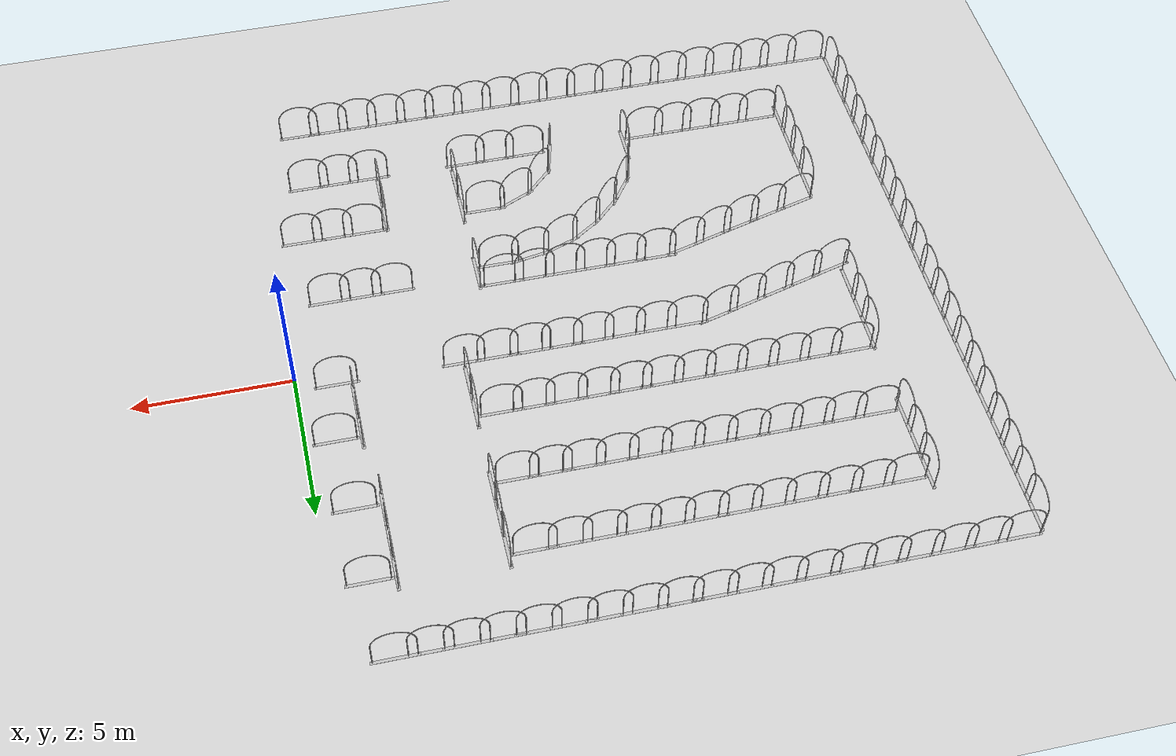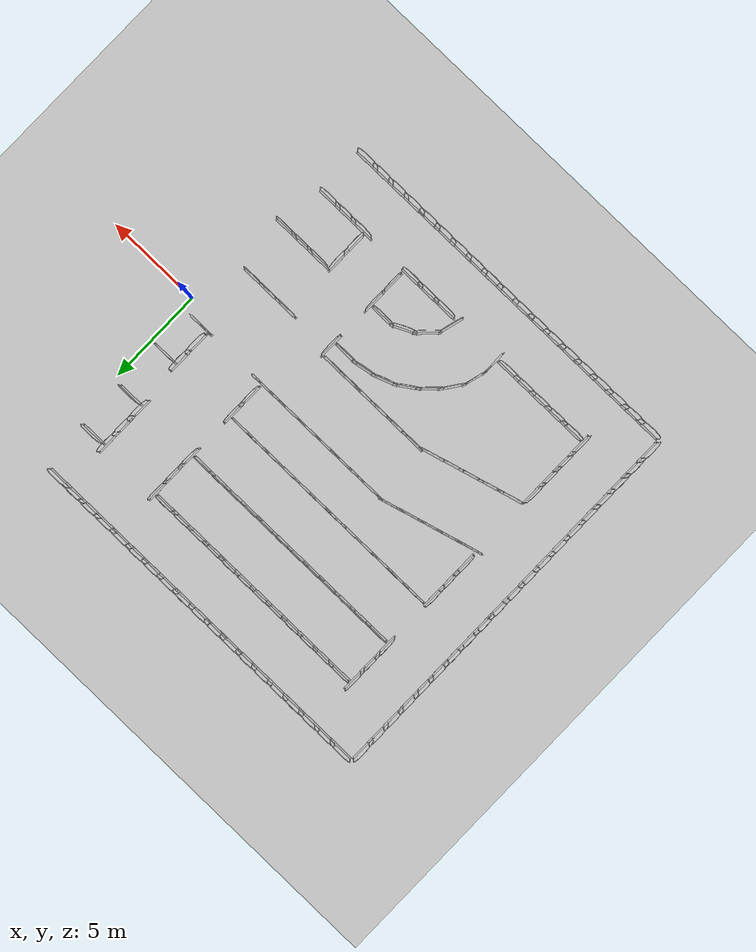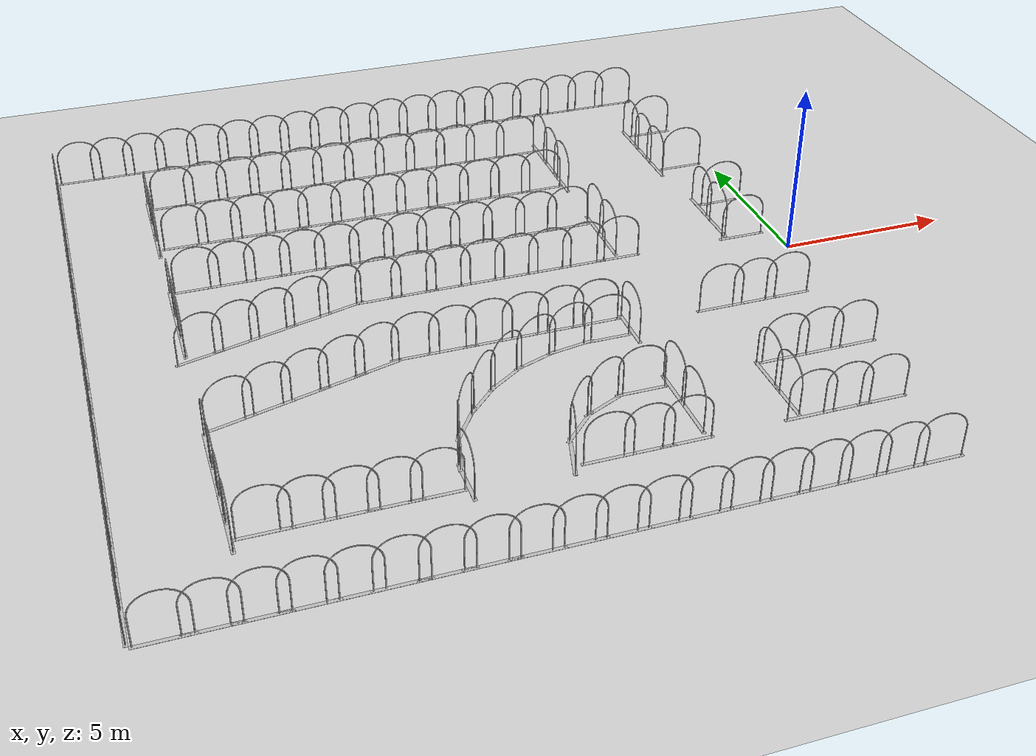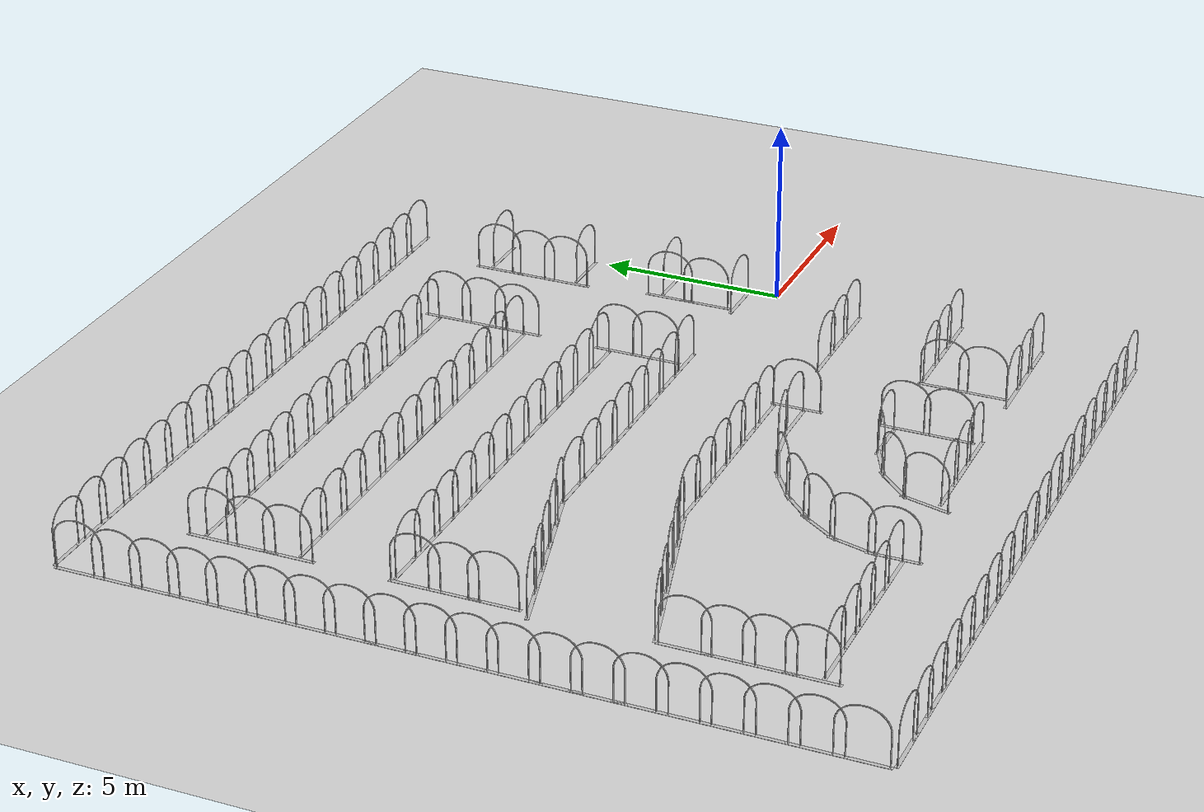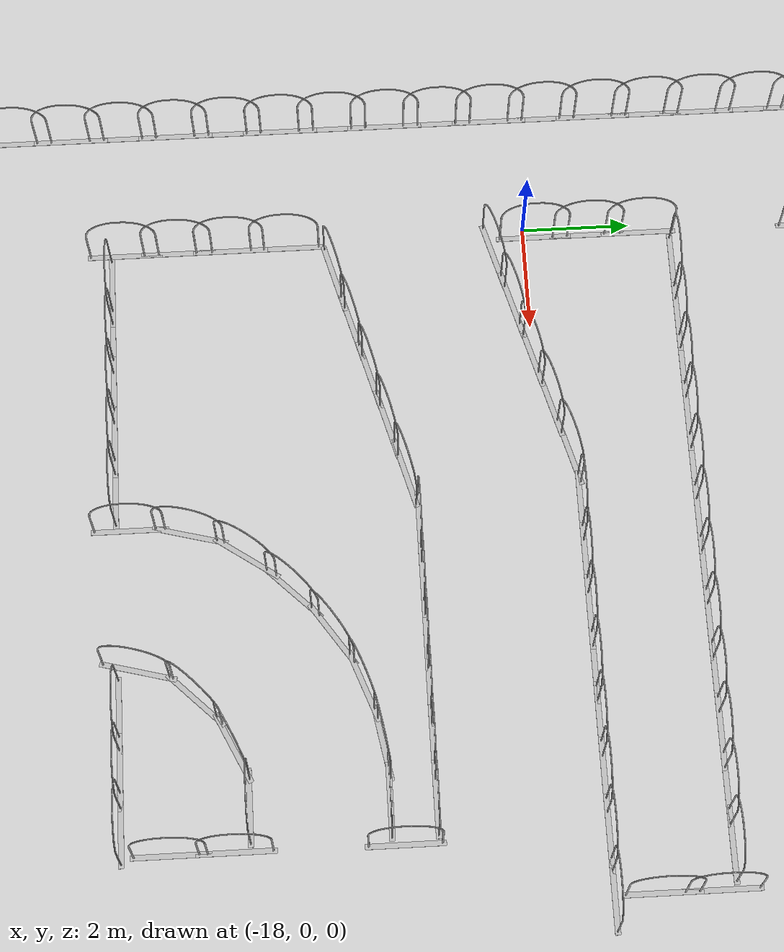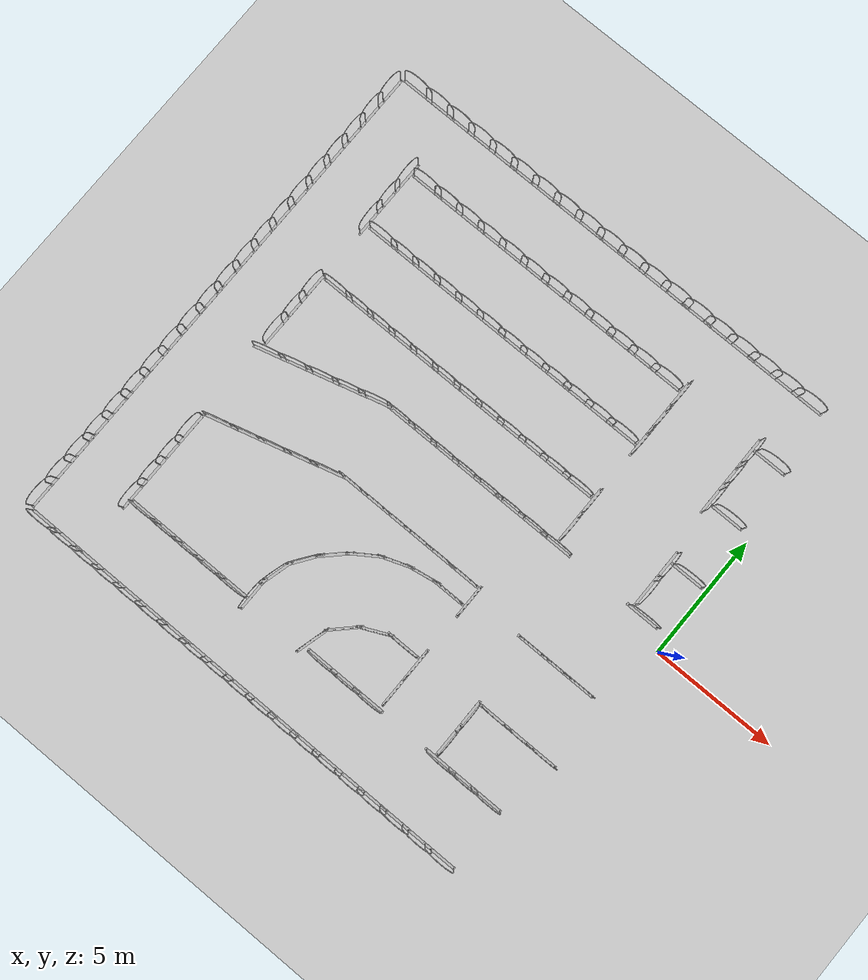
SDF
<sdf version="1.6">
 <world name="racetrack_world">
  <model name="ground_plane">
   <static>true</static>
   <link name="link">
    <collision name="collision"><geometry><plane><normal>0 0 1</normal></plane></geometry></collision>
    <visual name="visual">
     <geometry><plane><normal>0 0 1</normal><size>100 100</size></plane></geometry>
     <material>
      <ambient>0.8 0.8 0.8 1</ambient>
      <diffuse>0.8 0.8 0.8 1</diffuse>
      <specular>0.8 0.8 0.8 1</specular>
     </material>
    </visual>
   </link>
  </model>
  <include>
   <name>model_0</name>
   <uri>../models/straw_bale/model.sdf</uri>
   <pose>-19.5 10.25 0.25 0 0 -0.0</pose>
  </include>
  <include>
   <name>model_1</name>
   <uri>../models/straw_bale/model.sdf</uri>
   <pose>-18.5 10.25 0.25 0 0 -0.0</pose>
  </include>
  <include>
   <name>model_2</name>
   <uri>../models/straw_bale/model.sdf</uri>
   <pose>-17.5 10.25 0.25 0 0 -0.0</pose>
  </include>
  <include>
   <name>model_3</name>
   <uri>../models/straw_bale/model.sdf</uri>
   <pose>-16.5 10.25 0.25 0 0 -0.0</pose>
  </include>
  <include>
   <name>model_4</name>
   <uri>../models/straw_bale/model.sdf</uri>
   <pose>-15.5 10.25 0.25 0 0 -0.0</pose>
  </include>
  <include>
   <name>model_5</name>
   <uri>../models/straw_bale/model.sdf</uri>
   <pose>-14.5 10.25 0.25 0 0 -0.0</pose>
  </include>
  <include>
   <name>model_6</name>
   <uri>../models/straw_bale/model.sdf</uri>
   <pose>-13.5 10.25 0.25 0 0 -0.0</pose>
  </include>
  <include>
   <name>model_7</name>
   <uri>../models/straw_bale/model.sdf</uri>
   <pose>-12.5 10.25 0.25 0 0 -0.0</pose>
  </include>
  <include>
   <name>model_8</name>
   <uri>../models/straw_bale/model.sdf</uri>
   <pose>-20.25 9.5 0.25 0 0 1.5707963267948966</pose>
  </include>
  <include>
   <name>model_9</name>
   <uri>../models/straw_bale/model.sdf</uri>
   <pose>-20.25 8.5 0.25 0 0 1.5707963267948966</pose>
  </include>
  <include>
   <name>model_10</name>
   <uri>../models/straw_bale/model.sdf</uri>
   <pose>-20.25 7.5 0.25 0 0 1.5707963267948966</pose>
  </include>
  <include>
   <name>model_11</name>
   <uri>../models/straw_bale/model.sdf</uri>
   <pose>-20.25 6.5 0.25 0 0 1.5707963267948966</pose>
  </include>
  <include>
   <name>model_12</name>
   <uri>../models/straw_bale/model.sdf</uri>
   <pose>-20.25 5.5 0.25 0 0 1.5707963267948966</pose>
  </include>
  <include>
   <name>model_13</name>
   <uri>../models/straw_bale/model.sdf</uri>
   <pose>-20.25 4.5 0.25 0 0 1.5707963267948966</pose>
  </include>
  <include>
   <name>model_14</name>
   <uri>../models/straw_bale/model.sdf</uri>
   <pose>-20.25 3.5 0.25 0 0 1.5707963267948966</pose>
  </include>
  <include>
   <name>model_15</name>
   <uri>../models/straw_bale/model.sdf</uri>
   <pose>-20.25 2.5 0.25 0 0 1.5707963267948966</pose>
  </include>
  <include>
   <name>model_16</name>
   <uri>../models/straw_bale/model.sdf</uri>
   <pose>-11.5 10.25 0.25 0 0 -0.0</pose>
  </include>
  <include>
   <name>model_17</name>
   <uri>../models/straw_bale/model.sdf</uri>
   <pose>-10.5 10.25 0.25 0 0 -0.0</pose>
  </include>
  <include>
   <name>model_18</name>
   <uri>../models/straw_bale/model.sdf</uri>
   <pose>-9.5 10.25 0.25 0 0 -0.0</pose>
  </include>
  <include>
   <name>model_19</name>
   <uri>../models/straw_bale/model.sdf</uri>
   <pose>-8.5 10.25 0.25 0 0 -0.0</pose>
  </include>
  <include>
   <name>model_20</name>
   <uri>../models/straw_bale/model.sdf</uri>
   <pose>-7.5 10.25 0.25 0 0 -0.0</pose>
  </include>
  <include>
   <name>model_21</name>
   <uri>../models/straw_bale/model.sdf</uri>
   <pose>-6.5 10.25 0.25 0 0 -0.0</pose>
  </include>
  <include>
   <name>model_22</name>
   <uri>../models/straw_bale/model.sdf</uri>
   <pose>-5.5 10.25 0.25 0 0 -0.0</pose>
  </include>
  <include>
   <name>model_23</name>
   <uri>../models/straw_bale/model.sdf</uri>
   <pose>-4.5 10.25 0.25 0 0 -0.0</pose>
  </include>
  <include>
   <name>model_24</name>
   <uri>../models/straw_bale/model.sdf</uri>
   <pose>-3.5 10.25 0.25 0 0 -0.0</pose>
  </include>
  <include>
   <name>model_25</name>
   <uri>../models/straw_bale/model.sdf</uri>
   <pose>-2.5 10.25 0.25 0 0 -0.0</pose>
  </include>
  <include>
   <name>model_26</name>
   <uri>../models/straw_bale/model.sdf</uri>
   <pose>-1.5 10.25 0.25 0 0 -0.0</pose>
  </include>
  <include>
   <name>model_48</name>
   <uri>../models/straw_bale/model.sdf</uri>
   <pose>-20.25 1.5 0.25 0 0 1.5707963267948966</pose>
  </include>
  <include>
   <name>model_49</name>
   <uri>../models/straw_bale/model.sdf</uri>
   <pose>-20.25 0.5 0.25 0 0 1.5707963267948966</pose>
  </include>
  <include>
   <name>model_50</name>
   <uri>../models/straw_bale/model.sdf</uri>
   <pose>-20.25 -0.5 0.25 0 0 1.5707963267948966</pose>
  </include>
  <include>
   <name>model_51</name>
   <uri>../models/straw_bale/model.sdf</uri>
   <pose>-20.25 -1.5 0.25 0 0 1.5707963267948966</pose>
  </include>
  <include>
   <name>model_52</name>
   <uri>../models/straw_bale/model.sdf</uri>
   <pose>-20.25 -2.5 0.25 0 0 1.5707963267948966</pose>
  </include>
  <include>
   <name>model_53</name>
   <uri>../models/straw_bale/model.sdf</uri>
   <pose>-20.25 -3.5 0.25 0 0 1.5707963267948966</pose>
  </include>
  <include>
   <name>model_54</name>
   <uri>../models/straw_bale/model.sdf</uri>
   <pose>-20.25 -4.5 0.25 0 0 1.5707963267948966</pose>
  </include>
  <include>
   <name>model_55</name>
   <uri>../models/straw_bale/model.sdf</uri>
   <pose>-20.25 -5.5 0.25 0 0 1.5707963267948966</pose>
  </include>
  <include>
   <name>model_56</name>
   <uri>../models/straw_bale/model.sdf</uri>
   <pose>-20.25 -6.5 0.25 0 0 1.5707963267948966</pose>
  </include>
  <include>
   <name>model_57</name>
   <uri>../models/straw_bale/model.sdf</uri>
   <pose>-20.25 -7.5 0.25 0 0 1.5707963267948966</pose>
  </include>
  <include>
   <name>model_58</name>
   <uri>../models/straw_bale/model.sdf</uri>
   <pose>-20.25 -8.5 0.25 0 0 1.5707963267948966</pose>
  </include>
  <include>
   <name>model_59</name>
   <uri>../models/straw_bale/model.sdf</uri>
   <pose>-20.25 -9.5 0.25 0 0 1.5707963267948966</pose>
  </include>
  <include>
   <name>model_60</name>
   <uri>../models/straw_bale/model.sdf</uri>
   <pose>-19.5 -10.25 0.25 0 0 -0.0</pose>
  </include>
  <include>
   <name>model_61</name>
   <uri>../models/straw_bale/model.sdf</uri>
   <pose>-18.5 -10.25 0.25 0 0 -0.0</pose>
  </include>
  <include>
   <name>model_62</name>
   <uri>../models/straw_bale/model.sdf</uri>
   <pose>-17.5 -10.25 0.25 0 0 -0.0</pose>
  </include>
  <include>
   <name>model_63</name>
   <uri>../models/straw_bale/model.sdf</uri>
   <pose>-16.5 -10.25 0.25 0 0 -0.0</pose>
  </include>
  <include>
   <name>model_64</name>
   <uri>../models/straw_bale/model.sdf</uri>
   <pose>-15.5 -10.25 0.25 0 0 -0.0</pose>
  </include>
  <include>
   <name>model_65</name>
   <uri>../models/straw_bale/model.sdf</uri>
   <pose>-14.5 -10.25 0.25 0 0 -0.0</pose>
  </include>
  <include>
   <name>model_66</name>
   <uri>../models/straw_bale/model.sdf</uri>
   <pose>-13.5 -10.25 0.25 0 0 -0.0</pose>
  </include>
  <include>
   <name>model_67</name>
   <uri>../models/straw_bale/model.sdf</uri>
   <pose>-12.5 -10.25 0.25 0 0 -0.0</pose>
  </include>
  <include>
   <name>model_68</name>
   <uri>../models/straw_bale/model.sdf</uri>
   <pose>-11.5 -10.25 0.25 0 0 -0.0</pose>
  </include>
  <include>
   <name>model_69</name>
   <uri>../models/straw_bale/model.sdf</uri>
   <pose>-10.5 -10.25 0.25 0 0 -0.0</pose>
  </include>
  <include>
   <name>model_70</name>
   <uri>../models/straw_bale/model.sdf</uri>
   <pose>-9.5 -10.25 0.25 0 0 -0.0</pose>
  </include>
  <include>
   <name>model_71</name>
   <uri>../models/straw_bale/model.sdf</uri>
   <pose>-8.5 -10.25 0.25 0 0 -0.0</pose>
  </include>
  <include>
   <name>model_72</name>
   <uri>../models/straw_bale/model.sdf</uri>
   <pose>-7.5 -10.25 0.25 0 0 -0.0</pose>
  </include>
  <include>
   <name>model_73</name>
   <uri>../models/straw_bale/model.sdf</uri>
   <pose>-6.5 -10.25 0.25 0 0 -0.0</pose>
  </include>
  <include>
   <name>model_74</name>
   <uri>../models/straw_bale/model.sdf</uri>
   <pose>-5.5 -10.25 0.25 0 0 -0.0</pose>
  </include>
  <include>
   <name>model_75</name>
   <uri>../models/straw_bale/model.sdf</uri>
   <pose>-4.5 -10.25 0.25 0 0 -0.0</pose>
  </include>
  <include>
   <name>model_76</name>
   <uri>../models/straw_bale/model.sdf</uri>
   <pose>-3.5 -10.25 0.25 0 0 -0.0</pose>
  </include>
  <include>
   <name>model_77</name>
   <uri>../models/straw_bale/model.sdf</uri>
   <pose>-2.5 -10.25 0.25 0 0 -0.0</pose>
  </include>
  <include>
   <name>model_78</name>
   <uri>../models/straw_bale/model.sdf</uri>
   <pose>-1.5 -10.25 0.25 0 0 -0.0</pose>
  </include>
  <include>
   <name>model_115</name>
   <uri>../models/straw_bale/model.sdf</uri>
   <pose>-17.75 -7.5 0.25 0 0 1.5707963267948966</pose>
  </include>
  <include>
   <name>model_116</name>
   <uri>../models/straw_bale/model.sdf</uri>
   <pose>-17.75 -6.5 0.25 0 0 1.5707963267948966</pose>
  </include>
  <include>
   <name>model_117</name>
   <uri>../models/straw_bale/model.sdf</uri>
   <pose>-17.0 -7.75 0.25 0 0 3.141592653589793</pose>
  </include>
  <include>
   <name>model_118</name>
   <uri>../models/straw_bale/model.sdf</uri>
   <pose>-16.0 -7.75 0.25 0 0 3.141592653589793</pose>
  </include>
  <include>
   <name>model_119</name>
   <uri>../models/straw_bale/model.sdf</uri>
   <pose>-15.0 -7.75 0.25 0 0 3.141592653589793</pose>
  </include>
  <include>
   <name>model_120</name>
   <uri>../models/straw_bale/model.sdf</uri>
   <pose>-14.0 -7.75 0.25 0 0 3.141592653589793</pose>
  </include>
  <include>
   <name>model_121</name>
   <uri>../models/straw_bale/model.sdf</uri>
   <pose>-13.0 -7.75 0.25 0 0 3.141592653589793</pose>
  </include>
  <include>
   <name>model_122</name>
   <uri>../models/straw_bale/model.sdf</uri>
   <pose>-8.125 -5.775000000000002 0.25 0 0 3.5779249665883754</pose>
  </include>
  <include>
   <name>model_123</name>
   <uri>../models/straw_bale/model.sdf</uri>
   <pose>-12.25 -7.5 0.25 0 0 1.5707963267948966</pose>
  </include>
  <include>
   <name>model_124</name>
   <uri>../models/straw_bale/model.sdf</uri>
   <pose>-9.024999999999999 -6.400000000000002 0.25 0 0 -2.356194490192345</pose>
  </include>
  <include>
   <name>model_125</name>
   <uri>../models/straw_bale/model.sdf</uri>
   <pose>-9.600000000000001 -7.400000000000002 0.25 0 0 1.3089969389957472</pose>
  </include>
  <include>
   <name>model_126</name>
   <uri>../models/straw_bale/model.sdf</uri>
   <pose>-7.050000000000001 -5.525000000000002 0.25 0 0 3.141592653589793</pose>
  </include>
  <include>
   <name>model_127</name>
   <uri>../models/straw_bale/model.sdf</uri>
   <pose>-12.1 -6.425000000000001 0.25 0 0 1.3089969389957472</pose>
  </include>
  <include>
   <name>model_128</name>
   <uri>../models/straw_bale/model.sdf</uri>
   <pose>-10.924999999999999 -4.625 0.25 0 0 -2.356194490192345</pose>
  </include>
  <include>
   <name>model_129</name>
   <uri>../models/straw_bale/model.sdf</uri>
   <pose>-10.1 -3.950000000000003 0.25 0 0 -2.55</pose>
  </include>
  <include>
   <name>model_130</name>
   <uri>../models/straw_bale/model.sdf</uri>
   <pose>-9.125 -3.450000000000003 0.25 0 0 3.490658503988659</pose>
  </include>
  <include>
   <name>model_131</name>
   <uri>../models/straw_bale/model.sdf</uri>
   <pose>-8.075 -3.1750000000000007 0.25 0 0 3.3161255787892263</pose>
  </include>
  <include>
   <name>model_132</name>
   <uri>../models/straw_bale/model.sdf</uri>
   <pose>-7.024999999999999 -3.1000000000000014 0.25 0 0 3.141592653589793</pose>
  </include>
  <include>
   <name>model_133</name>
   <uri>../models/straw_bale/model.sdf</uri>
   <pose>-11.625 -5.425000000000001 0.25 0 0 0.9599310885968813</pose>
  </include>
  <include>
   <name>model_134</name>
   <uri>../models/straw_bale/model.sdf</uri>
   <pose>-8.825 -7.75 0.25 0 0 3.141592653589793</pose>
  </include>
  <include>
   <name>model_135</name>
   <uri>../models/straw_bale/model.sdf</uri>
   <pose>-7.800000000000001 -7.75 0.25 0 0 3.141592653589793</pose>
  </include>
  <include>
   <name>model_136</name>
   <uri>../models/straw_bale/model.sdf</uri>
   <pose>-6.800000000000001 -7.75 0.25 0 0 3.141592653589793</pose>
  </include>
  <include>
   <name>model_137</name>
   <uri>../models/straw_bale/model.sdf</uri>
   <pose>-6.274999999999999 -5.775000000000002 0.25 0 0 1.5707963267948966</pose>
  </include>
  <include>
   <name>model_138</name>
   <uri>../models/straw_bale/model.sdf</uri>
   <pose>-6.274999999999999 -6.900000000000002 0.25 0 0 1.5707963267948966</pose>
  </include>
  <include>
   <name>model_139</name>
   <uri>../models/straw_bale/model.sdf</uri>
   <pose>-6.25 -2.875 0.25 0 0 1.5707963267948966</pose>
  </include>
  <include>
   <name>model_140</name>
   <uri>../models/straw_bale/model.sdf</uri>
   <pose>-17.75 -5.525000000000002 0.25 0 0 1.5707963267948966</pose>
  </include>
  <include>
   <name>model_141</name>
   <uri>../models/straw_bale/model.sdf</uri>
   <pose>-7.024999999999999 -2.3000000000000007 0.25 0 0 3.141592653589793</pose>
  </include>
  <include>
   <name>model_142</name>
   <uri>../models/straw_bale/model.sdf</uri>
   <pose>-8.024999999999999 -2.3000000000000007 0.25 0 0 3.141592653589793</pose>
  </include>
  <include>
   <name>model_143</name>
   <uri>../models/straw_bale/model.sdf</uri>
   <pose>-9.024999999999999 -2.3000000000000007 0.25 0 0 3.141592653589793</pose>
  </include>
  <include>
   <name>model_144</name>
   <uri>../models/straw_bale/model.sdf</uri>
   <pose>-10.024999999999999 -2.3000000000000007 0.25 0 0 3.141592653589793</pose>
  </include>
  <include>
   <name>model_145</name>
   <uri>../models/straw_bale/model.sdf</uri>
   <pose>-11.024999999999999 -2.3000000000000007 0.25 0 0 3.141592653589793</pose>
  </include>
  <include>
   <name>model_147</name>
   <uri>../models/straw_bale/model.sdf</uri>
   <pose>-13.1 -2.5 0.25 0 0 0.2617993877991494</pose>
  </include>
  <include>
   <name>model_148</name>
   <uri>../models/straw_bale/model.sdf</uri>
   <pose>-12.024999999999999 -2.3000000000000007 0.25 0 0 3.141592653589793</pose>
  </include>
  <include>
   <name>model_149</name>
   <uri>../models/straw_bale/model.sdf</uri>
   <pose>-14.075 -2.775000000000002 0.25 0 0 0.2617993877991494</pose>
  </include>
  <include>
   <name>model_150</name>
   <uri>../models/straw_bale/model.sdf</uri>
   <pose>-15.075 -3.0500000000000007 0.25 0 0 0.2617993877991494</pose>
  </include>
  <include>
   <name>model_151</name>
   <uri>../models/straw_bale/model.sdf</uri>
   <pose>-16.075 -3.325000000000003 0.25 0 0 0.2617993877991494</pose>
  </include>
  <include>
   <name>model_152</name>
   <uri>../models/straw_bale/model.sdf</uri>
   <pose>-17.075 -3.6000000000000014 0.25 0 0 0.2617993877991494</pose>
  </include>
  <include>
   <name>model_153</name>
   <uri>../models/straw_bale/model.sdf</uri>
   <pose>-17.75 -4.5 0.25 0 0 1.5707963267948966</pose>
  </include>
  <include>
   <name>model_154</name>
   <uri>../models/straw_bale/model.sdf</uri>
   <pose>-13.375 0.5 0.25 0 0 0.2617993877991494</pose>
  </include>
  <include>
   <name>model_155</name>
   <uri>../models/straw_bale/model.sdf</uri>
   <pose>-14.35 0.22499999999999787 0.25 0 0 0.2617993877991494</pose>
  </include>
  <include>
   <name>model_156</name>
   <uri>../models/straw_bale/model.sdf</uri>
   <pose>-15.35 -0.05000000000000071 0.25 0 0 0.2617993877991494</pose>
  </include>
  <include>
   <name>model_157</name>
   <uri>../models/straw_bale/model.sdf</uri>
   <pose>-16.35 -0.3249999999999993 0.25 0 0 0.2617993877991494</pose>
  </include>
  <include>
   <name>model_158</name>
   <uri>../models/straw_bale/model.sdf</uri>
   <pose>-17.35 -0.6000000000000014 0.25 0 0 0.2617993877991494</pose>
  </include>
  <include>
   <name>model_159</name>
   <uri>../models/straw_bale/model.sdf</uri>
   <pose>-7.274999999999999 0.625 0.25 0 0 3.141592653589793</pose>
  </include>
  <include>
   <name>model_160</name>
   <uri>../models/straw_bale/model.sdf</uri>
   <pose>-8.274999999999999 0.625 0.25 0 0 3.141592653589793</pose>
  </include>
  <include>
   <name>model_161</name>
   <uri>../models/straw_bale/model.sdf</uri>
   <pose>-9.274999999999999 0.625 0.25 0 0 3.141592653589793</pose>
  </include>
  <include>
   <name>model_162</name>
   <uri>../models/straw_bale/model.sdf</uri>
   <pose>-10.274999999999999 0.625 0.25 0 0 3.141592653589793</pose>
  </include>
  <include>
   <name>model_163</name>
   <uri>../models/straw_bale/model.sdf</uri>
   <pose>-11.274999999999999 0.625 0.25 0 0 3.141592653589793</pose>
  </include>
  <include>
   <name>model_164</name>
   <uri>../models/straw_bale/model.sdf</uri>
   <pose>-12.274999999999999 0.625 0.25 0 0 3.141592653589793</pose>
  </include>
  <include>
   <name>model_165</name>
   <uri>../models/straw_bale/model.sdf</uri>
   <pose>-17.725 0.1750000000000007 0.25 0 0 1.5707963267948966</pose>
  </include>
  <include>
   <name>model_166</name>
   <uri>../models/straw_bale/model.sdf</uri>
   <pose>-17.725 1.1750000000000007 0.25 0 0 1.5707963267948966</pose>
  </include>
  <include>
   <name>model_167</name>
   <uri>../models/straw_bale/model.sdf</uri>
   <pose>-17.725 2.1499999999999986 0.25 0 0 1.5707963267948966</pose>
  </include>
  <include>
   <name>model_168</name>
   <uri>../models/straw_bale/model.sdf</uri>
   <pose>-17.725 5.449999999999999 0.25 0 0 1.5707963267948966</pose>
  </include>
  <include>
   <name>model_169</name>
   <uri>../models/straw_bale/model.sdf</uri>
   <pose>-17.725 6.424999999999999 0.25 0 0 1.5707963267948966</pose>
  </include>
  <include>
   <name>model_170</name>
   <uri>../models/straw_bale/model.sdf</uri>
   <pose>-17.725 7.449999999999999 0.25 0 0 1.5707963267948966</pose>
  </include>
  <include>
   <name>model_171</name>
   <uri>../models/straw_bale/model.sdf</uri>
   <pose>-11.924999999999999 5.199999999999999 0.25 0 0 3.141592653589793</pose>
  </include>
  <include>
   <name>model_172</name>
   <uri>../models/straw_bale/model.sdf</uri>
   <pose>-12.924999999999999 5.199999999999999 0.25 0 0 3.141592653589793</pose>
  </include>
  <include>
   <name>model_173</name>
   <uri>../models/straw_bale/model.sdf</uri>
   <pose>-13.924999999999999 5.199999999999999 0.25 0 0 3.141592653589793</pose>
  </include>
  <include>
   <name>model_174</name>
   <uri>../models/straw_bale/model.sdf</uri>
   <pose>-14.924999999999999 5.199999999999999 0.25 0 0 3.141592653589793</pose>
  </include>
  <include>
   <name>model_175</name>
   <uri>../models/straw_bale/model.sdf</uri>
   <pose>-15.924999999999999 5.199999999999999 0.25 0 0 3.141592653589793</pose>
  </include>
  <include>
   <name>model_176</name>
   <uri>../models/straw_bale/model.sdf</uri>
   <pose>-16.924999999999997 5.199999999999999 0.25 0 0 3.141592653589793</pose>
  </include>
  <include>
   <name>model_177</name>
   <uri>../models/straw_bale/model.sdf</uri>
   <pose>-5.924999999999997 5.199999999999999 0.25 0 0 3.141592653589793</pose>
  </include>
  <include>
   <name>model_178</name>
   <uri>../models/straw_bale/model.sdf</uri>
   <pose>-6.925000000000001 5.199999999999999 0.25 0 0 3.141592653589793</pose>
  </include>
  <include>
   <name>model_179</name>
   <uri>../models/straw_bale/model.sdf</uri>
   <pose>-7.925000000000001 5.199999999999999 0.25 0 0 3.141592653589793</pose>
  </include>
  <include>
   <name>model_180</name>
   <uri>../models/straw_bale/model.sdf</uri>
   <pose>-8.925 5.199999999999999 0.25 0 0 3.141592653589793</pose>
  </include>
  <include>
   <name>model_181</name>
   <uri>../models/straw_bale/model.sdf</uri>
   <pose>-9.924999999999997 5.199999999999999 0.25 0 0 3.141592653589793</pose>
  </include>
  <include>
   <name>model_182</name>
   <uri>../models/straw_bale/model.sdf</uri>
   <pose>-10.924999999999999 5.199999999999999 0.25 0 0 3.141592653589793</pose>
  </include>
  <include>
   <name>model_183</name>
   <uri>../models/straw_bale/model.sdf</uri>
   <pose>-11.95 2.7249999999999996 0.25 0 0 3.141592653589793</pose>
  </include>
  <include>
   <name>model_184</name>
   <uri>../models/straw_bale/model.sdf</uri>
   <pose>-12.95 2.7249999999999996 0.25 0 0 3.141592653589793</pose>
  </include>
  <include>
   <name>model_185</name>
   <uri>../models/straw_bale/model.sdf</uri>
   <pose>-13.95 2.7249999999999996 0.25 0 0 3.141592653589793</pose>
  </include>
  <include>
   <name>model_186</name>
   <uri>../models/straw_bale/model.sdf</uri>
   <pose>-14.95 2.7249999999999996 0.25 0 0 3.141592653589793</pose>
  </include>
  <include>
   <name>model_187</name>
   <uri>../models/straw_bale/model.sdf</uri>
   <pose>-15.95 2.7249999999999996 0.25 0 0 3.141592653589793</pose>
  </include>
  <include>
   <name>model_188</name>
   <uri>../models/straw_bale/model.sdf</uri>
   <pose>-16.95 2.7249999999999996 0.25 0 0 3.141592653589793</pose>
  </include>
  <include>
   <name>model_189</name>
   <uri>../models/straw_bale/model.sdf</uri>
   <pose>-5.949999999999999 2.7249999999999996 0.25 0 0 3.141592653589793</pose>
  </include>
  <include>
   <name>model_190</name>
   <uri>../models/straw_bale/model.sdf</uri>
   <pose>-6.949999999999999 2.7249999999999996 0.25 0 0 3.141592653589793</pose>
  </include>
  <include>
   <name>model_191</name>
   <uri>../models/straw_bale/model.sdf</uri>
   <pose>-7.949999999999999 2.7249999999999996 0.25 0 0 3.141592653589793</pose>
  </include>
  <include>
   <name>model_192</name>
   <uri>../models/straw_bale/model.sdf</uri>
   <pose>-8.95 2.7249999999999996 0.25 0 0 3.141592653589793</pose>
  </include>
  <include>
   <name>model_193</name>
   <uri>../models/straw_bale/model.sdf</uri>
   <pose>-9.95 2.7249999999999996 0.25 0 0 3.141592653589793</pose>
  </include>
  <include>
   <name>model_194</name>
   <uri>../models/straw_bale/model.sdf</uri>
   <pose>-10.95 2.7249999999999996 0.25 0 0 3.141592653589793</pose>
  </include>
  <include>
   <name>model_196</name>
   <uri>../models/straw_bale/model.sdf</uri>
   <pose>-0.9249999999999972 2.7249999999999996 0.25 0 0 3.141592653589793</pose>
  </include>
  <include>
   <name>model_203</name>
   <uri>../models/straw_bale/model.sdf</uri>
   <pose>-1.25 0.625 0.25 0 0 3.141592653589793</pose>
  </include>
  <include>
   <name>model_204</name>
   <uri>../models/straw_bale/model.sdf</uri>
   <pose>-6.25 0.625 0.25 0 0 3.141592653589793</pose>
  </include>
  <include>
   <name>model_214</name>
   <uri>../models/straw_bale/model.sdf</uri>
   <pose>-1.5 -2.6750000000000007 0.25 0 0 3.141592653589793</pose>
  </include>
  <include>
   <name>model_215</name>
   <uri>../models/straw_bale/model.sdf</uri>
   <pose>-2.5 -2.6750000000000007 0.25 0 0 3.141592653589793</pose>
  </include>
  <include>
   <name>model_216</name>
   <uri>../models/straw_bale/model.sdf</uri>
   <pose>-3.5 -2.6750000000000007 0.25 0 0 3.141592653589793</pose>
  </include>
  <include>
   <name>model_225</name>
   <uri>../models/straw_bale/model.sdf</uri>
   <pose>-0.9749999999999979 -5.375 0.25 0 0 3.141592653589793</pose>
  </include>
  <include>
   <name>model_226</name>
   <uri>../models/straw_bale/model.sdf</uri>
   <pose>-1.9749999999999979 -5.375 0.25 0 0 3.141592653589793</pose>
  </include>
  <include>
   <name>model_227</name>
   <uri>../models/straw_bale/model.sdf</uri>
   <pose>-2.974999999999998 -5.375 0.25 0 0 3.141592653589793</pose>
  </include>
  <include>
   <name>model_238</name>
   <uri>../models/straw_bale/model.sdf</uri>
   <pose>-1.5 -7.75 0.25 0 0 3.141592653589793</pose>
  </include>
  <include>
   <name>model_239</name>
   <uri>../models/straw_bale/model.sdf</uri>
   <pose>-2.5 -7.75 0.25 0 0 3.141592653589793</pose>
  </include>
  <include>
   <name>model_240</name>
   <uri>../models/straw_bale/model.sdf</uri>
   <pose>-3.5 -7.75 0.25 0 0 3.141592653589793</pose>
  </include>
  <include>
   <name>model_247</name>
   <uri>../models/straw_bale/model.sdf</uri>
   <pose>-3.75 -5.975000000000001 0.25 0 0 1.5707963267948966</pose>
  </include>
  <include>
   <name>model_248</name>
   <uri>../models/straw_bale/model.sdf</uri>
   <pose>-3.75 -7.0 0.25 0 0 1.5707963267948966</pose>
  </include>
  <include>
   <name>model_311</name>
   <uri>../models/straw_bale/model.sdf</uri>
   <pose>-5.149999999999999 5.449999999999999 0.25 0 0 1.5707963267948966</pose>
  </include>
  <include>
   <name>model_312</name>
   <uri>../models/straw_bale/model.sdf</uri>
   <pose>-5.149999999999999 6.424999999999999 0.25 0 0 1.5707963267948966</pose>
  </include>
  <include>
   <name>model_313</name>
   <uri>../models/straw_bale/model.sdf</uri>
   <pose>-5.149999999999999 7.449999999999999 0.25 0 0 1.5707963267948966</pose>
  </include>
  <include>
   <name>model_314</name>
   <uri>../models/straw_bale/model.sdf</uri>
   <pose>-16.95 7.699999999999999 0.25 0 0 -0.0</pose>
  </include>
  <include>
   <name>model_315</name>
   <uri>../models/straw_bale/model.sdf</uri>
   <pose>-15.95 7.699999999999999 0.25 0 0 -0.0</pose>
  </include>
  <include>
   <name>model_316</name>
   <uri>../models/straw_bale/model.sdf</uri>
   <pose>-14.95 7.699999999999999 0.25 0 0 -0.0</pose>
  </include>
  <include>
   <name>model_317</name>
   <uri>../models/straw_bale/model.sdf</uri>
   <pose>-13.95 7.699999999999999 0.25 0 0 -0.0</pose>
  </include>
  <include>
   <name>model_318</name>
   <uri>../models/straw_bale/model.sdf</uri>
   <pose>-12.95 7.699999999999999 0.25 0 0 -0.0</pose>
  </include>
  <include>
   <name>model_319</name>
   <uri>../models/straw_bale/model.sdf</uri>
   <pose>-11.95 7.699999999999999 0.25 0 0 -0.0</pose>
  </include>
  <include>
   <name>model_320</name>
   <uri>../models/straw_bale/model.sdf</uri>
   <pose>-10.95 7.699999999999999 0.25 0 0 -0.0</pose>
  </include>
  <include>
   <name>model_321</name>
   <uri>../models/straw_bale/model.sdf</uri>
   <pose>-9.95 7.699999999999999 0.25 0 0 -0.0</pose>
  </include>
  <include>
   <name>model_322</name>
   <uri>../models/straw_bale/model.sdf</uri>
   <pose>-8.95 7.699999999999999 0.25 0 0 -0.0</pose>
  </include>
  <include>
   <name>model_323</name>
   <uri>../models/straw_bale/model.sdf</uri>
   <pose>-7.949999999999999 7.699999999999999 0.25 0 0 -0.0</pose>
  </include>
  <include>
   <name>model_324</name>
   <uri>../models/straw_bale/model.sdf</uri>
   <pose>-6.949999999999999 7.699999999999999 0.25 0 0 -0.0</pose>
  </include>
  <include>
   <name>model_325</name>
   <uri>../models/straw_bale/model.sdf</uri>
   <pose>-5.924999999999997 7.699999999999999 0.25 0 0 -0.0</pose>
  </include>
  <include>
   <name>model_326</name>
   <uri>../models/straw_bale/model.sdf</uri>
   <pose>-1.9375 5.475 0.25 0 0 1.5707963267948966</pose>
  </include>
  <include>
   <name>model_327</name>
   <uri>../models/straw_bale/model.sdf</uri>
   <pose>-1.9375 6.449999999999999 0.25 0 0 1.5707963267948966</pose>
  </include>
  <include>
   <name>model_328</name>
   <uri>../models/straw_bale/model.sdf</uri>
   <pose>-1.9375 7.475 0.25 0 0 1.5707963267948966</pose>
  </include>
  <include>
   <name>model_334</name>
   <uri>../models/straw_bale/model.sdf</uri>
   <pose>-1.1374999999999993 5.225 0.25 0 0 3.141592653589793</pose>
  </include>
  <include>
   <name>model_340</name>
   <uri>../models/straw_bale/model.sdf</uri>
   <pose>-1.1624999999999979 7.725 0.25 0 0 -0.0</pose>
  </include>
  <include>
   <name>model_348</name>
   <uri>../models/straw_bale/model.sdf</uri>
   <pose>-5.174999999999997 2.4749999999999996 0.25 0 0 1.5707963267948966</pose>
  </include>
  <include>
   <name>model_349</name>
   <uri>../models/straw_bale/model.sdf</uri>
   <pose>-5.174999999999997 1.4499999999999993 0.25 0 0 1.5707963267948966</pose>
  </include>
  <include>
   <name>model_350</name>
   <uri>../models/straw_bale/model.sdf</uri>
   <pose>-5.199999999999999 0.625 0.25 0 0 3.141592653589793</pose>
  </include>
  <include>
   <name>model_351</name>
   <uri>../models/straw_bale/model.sdf</uri>
   <pose>-1.6999999999999993 2.4749999999999996 0.25 0 0 1.5707963267948966</pose>
  </include>
  <include>
   <name>model_352</name>
   <uri>../models/straw_bale/model.sdf</uri>
   <pose>-1.6999999999999993 1.4250000000000007 0.25 0 0 1.5707963267948966</pose>
  </include>
 </world>
</sdf>
